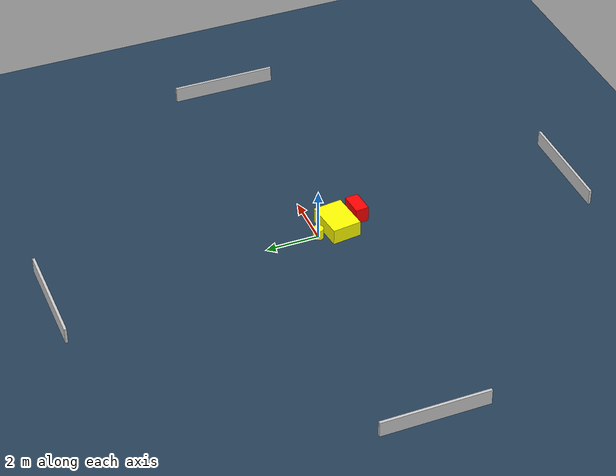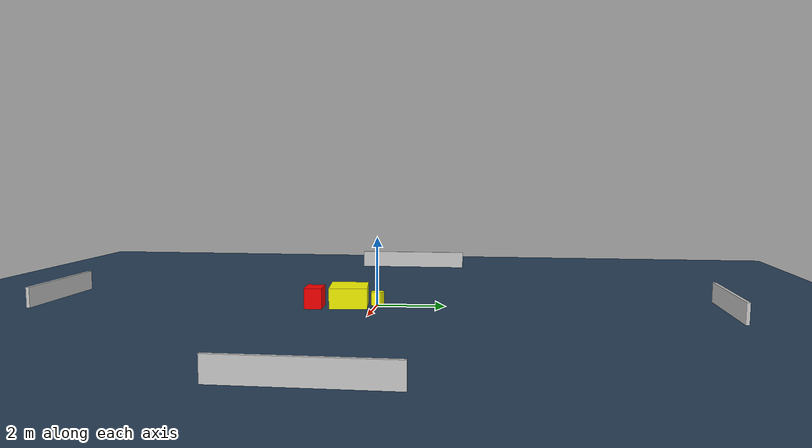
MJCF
<?xml version="1.0" ?>
<mujoco model="generated_environment">
  <option timestep="0.01" integrator="RK4" cone="elliptic"/>
  <default>
    <geom density="1"/>
  </default>
  <asset>
    <texture builtin="gradient" height="3072" name="skybox" rgb1="0.3 0.5 0.7" rgb2="0 0 0" type="skybox" width="512"/>
    <texture builtin="checker" height="300" name="groundplane" rgb1="0.2 0.3 0.4" rgb2="0.1 0.2 0.3" type="2d" width="300"/>
    <material name="groundplane" reflectance="0.2" texrepeat="5 5" texture="groundplane"/>
  </asset>
  <worldbody>
    <light dir="0 0 -1" directional="true" pos="0 0 1.5"/>
    <geom condim="3" friction="0.5 0.005 0.001" material="groundplane" name="floor" pos="0 0 0" size="0 0 0.05" type="plane"/>
    <body name="walls">
      <geom name="wall_1" condim="4" pos="-10.0 0.0 0.3" rgba="0.800000011920929 0.800000011920929 0.800000011920929 1.0" size="0.05 2.0 0.3" type="box"/>
      <geom name="wall_2" condim="4" pos="10.0 0.0 0.3" rgba="0.800000011920929 0.800000011920929 0.800000011920929 1.0" size="0.05 2.0 0.3" type="box"/>
      <geom name="wall_3" condim="4" pos="0.0 -10.0 0.3" rgba="0.800000011920929 0.800000011920929 0.800000011920929 1.0" size="2.0 0.05 0.3" type="box"/>
      <geom name="wall_4" condim="4" pos="0.0 10.0 0.3" rgba="0.800000011920929 0.800000011920929 0.800000011920929 1.0" size="2.0 0.05 0.3" type="box"/>
    </body>
    <body name="robot">
      <joint name="joint_x" type="slide" pos="0 0 0" axis="1 0 0"/>
      <joint name="joint_y" type="slide" pos="0 0 0" axis="0 1 0"/>
      <geom name="robot" type="cylinder" pos="0.0 0.0 0.2" size="0.2 0.2 0.0" mass="5.0" friction="1.0 0.005 0.0001" condim="4" rgba="1.0 1.0 0.0 1.0"/>
    </body>
    <body name="obstacle_1_movable">
      <geom name="obstacle_1_movable" condim="4" pos="0.2011732139211577 -0.8200004221030441 0.3" euler="0 0 6.875253929100422" friction="0.0 0.005 0.001" rgba="1.0 1.0 0.0 1.0" size="0.7392854946945828 0.5530321810080024 0.3" type="box" mass="0.1"/>
      <joint type="free"/>
    </body>
    <body name="obstacle_2_static">
      <geom name="obstacle_2_static" condim="4" pos="0.6193377712888561 -1.7716356140258815 0.3" euler="0 0 94.30339016009893" friction="0.0 0.005 0.001" rgba="1.0 0.0 0.0 1.0" size="0.25579194272291467 0.4369385550307713 0.3" type="box"/>
    </body>
  </worldbody>
  <actuator>
    <motor name="actuator_x" joint="joint_x" gear="1" ctrlrange="-1 1"/>
    <motor name="actuator_y" joint="joint_y" gear="1" ctrlrange="-1 1"/>
  </actuator>
</mujoco>
